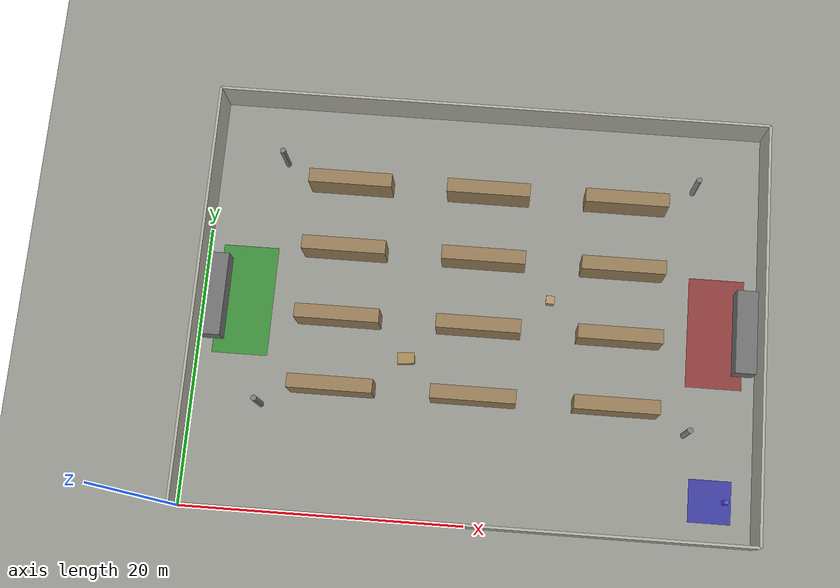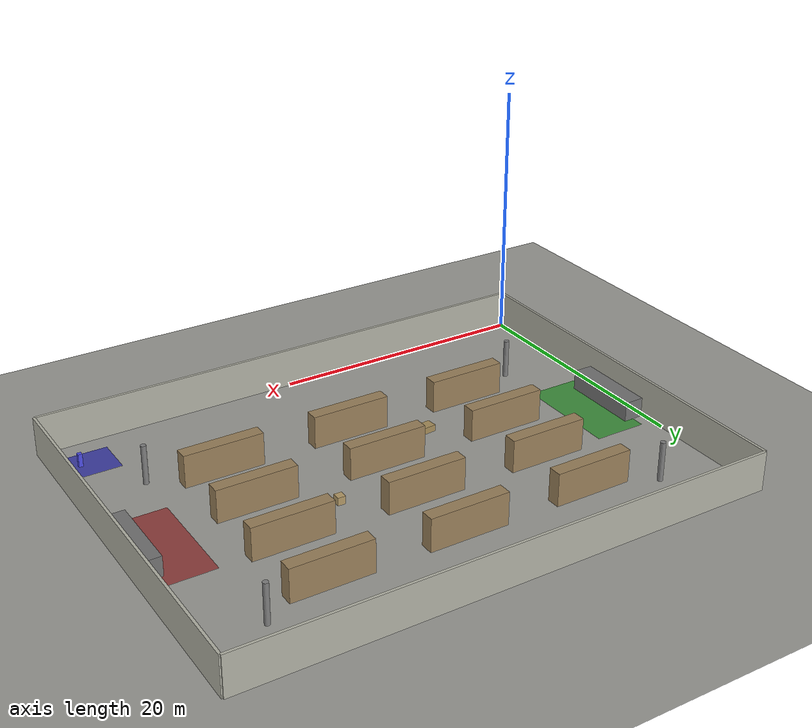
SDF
<?xml version="1.0"?>
<sdf version="1.8">
  <world name="warehouse">
    <plugin filename="ignition-gazebo-physics-system" name="ignition::gazebo::systems::Physics"/>
    <plugin filename="ignition-gazebo-sensors-system" name="ignition::gazebo::systems::Sensors"><render_engine>ogre2</render_engine></plugin>
    <plugin filename="ignition-gazebo-imu-system" name="ignition::gazebo::systems::Imu"/>
    <plugin filename="ignition-gazebo-user-commands-system" name="ignition::gazebo::systems::UserCommands"/>
    <plugin filename="ignition-gazebo-scene-broadcaster-system" name="ignition::gazebo::systems::SceneBroadcaster"/>

    <!--  Opticore Logistics Warehouse                                -->
    <!--  Size: 40m × 30m (internal usable area)                      -->
    <!--  Layout:                                                      -->
    <!--    - 4 rack rows (each 3 racks) in center                    -->
    <!--    - 3m corridors between rows                                -->
    <!--    - Loading zone (left wall)                                 -->
    <!--    - Unloading zone (right wall)                              -->
    <!--    - Charging station (bottom-right corner)                   -->
    <!--    - Columns for structural realism                           -->

    <!-- Physics -->
    <physics type="ode">
      <max_step_size>0.004</max_step_size>
      <real_time_factor>1.0</real_time_factor>
      <real_time_update_rate>250</real_time_update_rate>
    </physics>

    <!-- Lighting -->
    <light type="directional" name="warehouse_light_1">
      <cast_shadows>true</cast_shadows>
      <pose>20 15 12 0 0 0</pose>
      <diffuse>0.9 0.9 0.85 1</diffuse>
      <specular>0.3 0.3 0.3 1</specular>
      <direction>-0.3 -0.2 -1.0</direction>
    </light>

    <light type="directional" name="warehouse_light_2">
      <cast_shadows>false</cast_shadows>
      <pose>20 15 12 0 0 0</pose>
      <diffuse>0.4 0.4 0.45 1</diffuse>
      <specular>0.1 0.1 0.1 1</specular>
      <direction>0.3 0.2 -1.0</direction>
    </light>

    <!-- Ground Plane -->
    <model name="ground_plane">
      <static>true</static>
      <link name="ground_link">
        <collision name="ground_collision">
          <geometry>
            <plane><normal>0 0 1</normal><size>50 40</size></plane>
          </geometry>
          <surface>
            <friction>
              <ode>
                <mu>0.6</mu>       <!-- 정지 마찰: 에폭시 코팅 바닥 기준 (1.0은 드라이 고무 수준으로 너무 높음) -->
                <mu2>0.5</mu2>     <!-- 횡방향 슬립 마찰 -->
                <slip1>0.003</slip1>   <!-- 종방향 미끄럼 허용 -->
                <slip2>0.003</slip2>   <!-- 횡방향 미끄럼 허용 -->
                <fdir1>1 0 0</fdir1>   <!-- 주 마찰 방향: X축 (전진 방향) -->
            </ode>
          </friction>
          <contact>
            <ode>
              <kp>1e6</kp>           <!-- 접촉 강성: 딱딱한 콘크리트 바닥 -->
              <kd>100.0</kd>         <!-- 접촉 댐핑 -->
              <max_vel>0.1</max_vel>
              <min_depth>0.001</min_depth>
            </ode>
          </contact>
        </surface>
        </collision>
        <visual name="ground_visual">
          <geometry>
            <plane><normal>0 0 1</normal><size>50 40</size></plane>
          </geometry>
          <material>
            <ambient>0.6 0.6 0.58 1</ambient>
            <diffuse>0.6 0.6 0.58 1</diffuse>
          </material>
        </visual>
      </link>
    </model>

    <!-- ==================== WALLS ==================== -->

    <!-- North wall (back) -->
    <model name="wall_north">
      <static>true</static>
      <pose>20 30 1.5 0 0 0</pose>
      <link name="link">
        <collision name="collision">
          <geometry><box><size>40 0.2 3.0</size></box></geometry>
        </collision>
        <visual name="visual">
          <geometry><box><size>40 0.2 3.0</size></box></geometry>
          <material><ambient>0.7 0.7 0.65 1</ambient><diffuse>0.7 0.7 0.65 1</diffuse></material>
        </visual>
      </link>
    </model>

    <!-- South wall (front) -->
    <model name="wall_south">
      <static>true</static>
      <pose>20 0 1.5 0 0 0</pose>
      <link name="link">
        <collision name="collision">
          <geometry><box><size>40 0.2 3.0</size></box></geometry>
        </collision>
        <visual name="visual">
          <geometry><box><size>40 0.2 3.0</size></box></geometry>
          <material><ambient>0.7 0.7 0.65 1</ambient><diffuse>0.7 0.7 0.65 1</diffuse></material>
        </visual>
      </link>
    </model>

    <!-- West wall (left) -->
    <model name="wall_west">
      <static>true</static>
      <pose>0 15 1.5 0 0 0</pose>
      <link name="link">
        <collision name="collision">
          <geometry><box><size>0.2 30 3.0</size></box></geometry>
        </collision>
        <visual name="visual">
          <geometry><box><size>0.2 30 3.0</size></box></geometry>
          <material><ambient>0.7 0.7 0.65 1</ambient><diffuse>0.7 0.7 0.65 1</diffuse></material>
        </visual>
      </link>
    </model>

    <!-- East wall (right) -->
    <model name="wall_east">
      <static>true</static>
      <pose>40 15 1.5 0 0 0</pose>
      <link name="link">
        <collision name="collision">
          <geometry><box><size>0.2 30 3.0</size></box></geometry>
        </collision>
        <visual name="visual">
          <geometry><box><size>0.2 30 3.0</size></box></geometry>
          <material><ambient>0.7 0.7 0.65 1</ambient><diffuse>0.7 0.7 0.65 1</diffuse></material>
        </visual>
      </link>
    </model>

    <!-- ==================== STORAGE RACKS ==================== -->

    <!-- Rack: 6m long × 1m deep × 2.5m tall -->

    <!-- Row 1 (y=9) -->
    <model name="rack_r1_1">
      <static>true</static>
      <pose>10 9 1.25 0 0 0</pose>
      <link name="link">
        <collision name="collision"><geometry><box><size>6.0 1.0 2.5</size></box></geometry></collision>
        <visual name="visual">
          <geometry><box><size>6.0 1.0 2.5</size></box></geometry>
          <material><ambient>0.55 0.45 0.3 1</ambient><diffuse>0.6 0.5 0.35 1</diffuse></material>
        </visual>
      </link>
    </model>

    <model name="rack_r1_2">
      <static>true</static>
      <pose>20 9 1.25 0 0 0</pose>
      <link name="link">
        <collision name="collision"><geometry><box><size>6.0 1.0 2.5</size></box></geometry></collision>
        <visual name="visual">
          <geometry><box><size>6.0 1.0 2.5</size></box></geometry>
          <material><ambient>0.55 0.45 0.3 1</ambient><diffuse>0.6 0.5 0.35 1</diffuse></material>
        </visual>
      </link>
    </model>

    <model name="rack_r1_3">
      <static>true</static>
      <pose>30 9 1.25 0 0 0</pose>
      <link name="link">
        <collision name="collision"><geometry><box><size>6.0 1.0 2.5</size></box></geometry></collision>
        <visual name="visual">
          <geometry><box><size>6.0 1.0 2.5</size></box></geometry>
          <material><ambient>0.55 0.45 0.3 1</ambient><diffuse>0.6 0.5 0.35 1</diffuse></material>
        </visual>
      </link>
    </model>

    <!-- Row 2 (y=14) -->
    <model name="rack_r2_1">
      <static>true</static>
      <pose>10 14 1.25 0 0 0</pose>
      <link name="link">
        <collision name="collision"><geometry><box><size>6.0 1.0 2.5</size></box></geometry></collision>
        <visual name="visual">
          <geometry><box><size>6.0 1.0 2.5</size></box></geometry>
          <material><ambient>0.55 0.45 0.3 1</ambient><diffuse>0.6 0.5 0.35 1</diffuse></material>
        </visual>
      </link>
    </model>

    <model name="rack_r2_2">
      <static>true</static>
      <pose>20 14 1.25 0 0 0</pose>
      <link name="link">
        <collision name="collision"><geometry><box><size>6.0 1.0 2.5</size></box></geometry></collision>
        <visual name="visual">
          <geometry><box><size>6.0 1.0 2.5</size></box></geometry>
          <material><ambient>0.55 0.45 0.3 1</ambient><diffuse>0.6 0.5 0.35 1</diffuse></material>
        </visual>
      </link>
    </model>

    <model name="rack_r2_3">
      <static>true</static>
      <pose>30 14 1.25 0 0 0</pose>
      <link name="link">
        <collision name="collision"><geometry><box><size>6.0 1.0 2.5</size></box></geometry></collision>
        <visual name="visual">
          <geometry><box><size>6.0 1.0 2.5</size></box></geometry>
          <material><ambient>0.55 0.45 0.3 1</ambient><diffuse>0.6 0.5 0.35 1</diffuse></material>
        </visual>
      </link>
    </model>

    <!-- Row 3 (y=19) -->
    <model name="rack_r3_1">
      <static>true</static>
      <pose>10 19 1.25 0 0 0</pose>
      <link name="link">
        <collision name="collision"><geometry><box><size>6.0 1.0 2.5</size></box></geometry></collision>
        <visual name="visual">
          <geometry><box><size>6.0 1.0 2.5</size></box></geometry>
          <material><ambient>0.55 0.45 0.3 1</ambient><diffuse>0.6 0.5 0.35 1</diffuse></material>
        </visual>
      </link>
    </model>

    <model name="rack_r3_2">
      <static>true</static>
      <pose>20 19 1.25 0 0 0</pose>
      <link name="link">
        <collision name="collision"><geometry><box><size>6.0 1.0 2.5</size></box></geometry></collision>
        <visual name="visual">
          <geometry><box><size>6.0 1.0 2.5</size></box></geometry>
          <material><ambient>0.55 0.45 0.3 1</ambient><diffuse>0.6 0.5 0.35 1</diffuse></material>
        </visual>
      </link>
    </model>

    <model name="rack_r3_3">
      <static>true</static>
      <pose>30 19 1.25 0 0 0</pose>
      <link name="link">
        <collision name="collision"><geometry><box><size>6.0 1.0 2.5</size></box></geometry></collision>
        <visual name="visual">
          <geometry><box><size>6.0 1.0 2.5</size></box></geometry>
          <material><ambient>0.55 0.45 0.3 1</ambient><diffuse>0.6 0.5 0.35 1</diffuse></material>
        </visual>
      </link>
    </model>

    <!-- Row 4 (y=24) -->
    <model name="rack_r4_1">
      <static>true</static>
      <pose>10 24 1.25 0 0 0</pose>
      <link name="link">
        <collision name="collision"><geometry><box><size>6.0 1.0 2.5</size></box></geometry></collision>
        <visual name="visual">
          <geometry><box><size>6.0 1.0 2.5</size></box></geometry>
          <material><ambient>0.55 0.45 0.3 1</ambient><diffuse>0.6 0.5 0.35 1</diffuse></material>
        </visual>
      </link>
    </model>

    <model name="rack_r4_2">
      <static>true</static>
      <pose>20 24 1.25 0 0 0</pose>
      <link name="link">
        <collision name="collision"><geometry><box><size>6.0 1.0 2.5</size></box></geometry></collision>
        <visual name="visual">
          <geometry><box><size>6.0 1.0 2.5</size></box></geometry>
          <material><ambient>0.55 0.45 0.3 1</ambient><diffuse>0.6 0.5 0.35 1</diffuse></material>
        </visual>
      </link>
    </model>

    <model name="rack_r4_3">
      <static>true</static>
      <pose>30 24 1.25 0 0 0</pose>
      <link name="link">
        <collision name="collision"><geometry><box><size>6.0 1.0 2.5</size></box></geometry></collision>
        <visual name="visual">
          <geometry><box><size>6.0 1.0 2.5</size></box></geometry>
          <material><ambient>0.55 0.45 0.3 1</ambient><diffuse>0.6 0.5 0.35 1</diffuse></material>
        </visual>
      </link>
    </model>

    <!-- ==================== STRUCTURAL COLUMNS ==================== -->

    <model name="column_1">
      <static>true</static>
      <pose>5 7.5 1.5 0 0 0</pose>
      <link name="link">
        <collision name="collision"><geometry><cylinder><radius>0.2</radius><length>3.0</length></cylinder></geometry></collision>
        <visual name="visual">
          <geometry><cylinder><radius>0.2</radius><length>3.0</length></cylinder></geometry>
          <material><ambient>0.5 0.5 0.5 1</ambient><diffuse>0.5 0.5 0.5 1</diffuse></material>
        </visual>
      </link>
    </model>

    <model name="column_2">
      <static>true</static>
      <pose>35 7.5 1.5 0 0 0</pose>
      <link name="link">
        <collision name="collision"><geometry><cylinder><radius>0.2</radius><length>3.0</length></cylinder></geometry></collision>
        <visual name="visual">
          <geometry><cylinder><radius>0.2</radius><length>3.0</length></cylinder></geometry>
          <material><ambient>0.5 0.5 0.5 1</ambient><diffuse>0.5 0.5 0.5 1</diffuse></material>
        </visual>
      </link>
    </model>

    <model name="column_3">
      <static>true</static>
      <pose>5 25.5 1.5 0 0 0</pose>
      <link name="link">
        <collision name="collision"><geometry><cylinder><radius>0.2</radius><length>3.0</length></cylinder></geometry></collision>
        <visual name="visual">
          <geometry><cylinder><radius>0.2</radius><length>3.0</length></cylinder></geometry>
          <material><ambient>0.5 0.5 0.5 1</ambient><diffuse>0.5 0.5 0.5 1</diffuse></material>
        </visual>
      </link>
    </model>

    <model name="column_4">
      <static>true</static>
      <pose>35 25.5 1.5 0 0 0</pose>
      <link name="link">
        <collision name="collision"><geometry><cylinder><radius>0.2</radius><length>3.0</length></cylinder></geometry></collision>
        <visual name="visual">
          <geometry><cylinder><radius>0.2</radius><length>3.0</length></cylinder></geometry>
          <material><ambient>0.5 0.5 0.5 1</ambient><diffuse>0.5 0.5 0.5 1</diffuse></material>
        </visual>
      </link>
    </model>

    <!-- ==================== LOADING ZONE (West side) ==================== -->

    <model name="loading_zone">
      <static>true</static>
      <pose>3 15 0.001 0 0 0</pose>
      <link name="link">
        <visual name="visual">
          <geometry><box><size>4.0 8.0 0.001</size></box></geometry>
          <material><ambient>0.2 0.5 0.2 0.8</ambient><diffuse>0.2 0.6 0.2 0.8</diffuse></material>
        </visual>
      </link>
    </model>

    <!-- Loading dock — 높이 0.3 → 1.5m (LiDAR 감지 가능) -->
    <model name="loading_dock">
      <static>true</static>
      <pose>1.0 15 0.75 0 0 0</pose>
      <link name="link">
        <collision name="collision"><geometry><box><size>1.5 6.0 1.5</size></box></geometry></collision>
        <visual name="visual">
          <geometry><box><size>1.5 6.0 1.5</size></box></geometry>
          <material><ambient>0.4 0.4 0.4 1</ambient><diffuse>0.45 0.45 0.45 1</diffuse></material>
        </visual>
      </link>
    </model>

    <!-- ==================== UNLOADING ZONE (East side) ==================== -->

    <model name="unloading_zone">
      <static>true</static>
      <pose>37 15 0.001 0 0 0</pose>
      <link name="link">
        <visual name="visual">
          <geometry><box><size>4.0 8.0 0.001</size></box></geometry>
          <material><ambient>0.5 0.2 0.2 0.8</ambient><diffuse>0.6 0.2 0.2 0.8</diffuse></material>
        </visual>
      </link>
    </model>

    <!-- Unloading dock — 높이 0.3 → 1.5m (LiDAR 감지 가능) -->
    <model name="unloading_dock">
      <static>true</static>
      <pose>39.0 15 0.75 0 0 0</pose>
      <link name="link">
        <collision name="collision"><geometry><box><size>1.5 6.0 1.5</size></box></geometry></collision>
        <visual name="visual">
          <geometry><box><size>1.5 6.0 1.5</size></box></geometry>
          <material><ambient>0.4 0.4 0.4 1</ambient><diffuse>0.45 0.45 0.45 1</diffuse></material>
        </visual>
      </link>
    </model>

    <!-- ==================== CHARGING STATION (SE corner) ==================== -->

    <model name="charging_station">
      <static>true</static>
      <pose>37 3 0.001 0 0 0</pose>
      <link name="link">
        <visual name="visual">
          <geometry><box><size>3.0 3.0 0.001</size></box></geometry>
          <material><ambient>0.2 0.2 0.6 0.8</ambient><diffuse>0.2 0.2 0.7 0.8</diffuse></material>
        </visual>
      </link>
    </model>

    <!-- Charging post (높이 1.0m — 이미 LiDAR 감지 가능) -->
    <model name="charging_post">
      <static>true</static>
      <pose>38 3 0.5 0 0 0</pose>
      <link name="link">
        <collision name="collision"><geometry><box><size>0.3 0.3 1.0</size></box></geometry></collision>
        <visual name="visual">
          <geometry><box><size>0.3 0.3 1.0</size></box></geometry>
          <material><ambient>0.3 0.3 0.8 1</ambient><diffuse>0.3 0.3 0.9 1</diffuse></material>
        </visual>
      </link>
    </model>

    <!-- ==================== STATIC OBSTACLES ==================== -->

    <model name="pallet_1">
      <static>true</static>
      <pose>15 11.5 0.25 0 0 0.1</pose>
      <link name="link">
        <collision name="collision"><geometry><box><size>1.2 0.8 0.5</size></box></geometry></collision>
        <visual name="visual">
          <geometry><box><size>1.2 0.8 0.5</size></box></geometry>
          <material><ambient>0.6 0.5 0.3 1</ambient><diffuse>0.65 0.55 0.35 1</diffuse></material>
        </visual>
      </link>
    </model>

    <model name="box_stack_1">
      <static>true</static>
      <pose>25 16.5 0.3 0 0 -0.05</pose>
      <link name="link">
        <collision name="collision"><geometry><box><size>0.6 0.6 0.6</size></box></geometry></collision>
        <visual name="visual">
          <geometry><box><size>0.6 0.6 0.6</size></box></geometry>
          <material><ambient>0.65 0.55 0.35 1</ambient><diffuse>0.7 0.6 0.4 1</diffuse></material>
        </visual>
      </link>
    </model>

    <!-- ==================== DYNAMIC OBSTACLES (주석 처리) ==================== -->

  </world>
</sdf>
